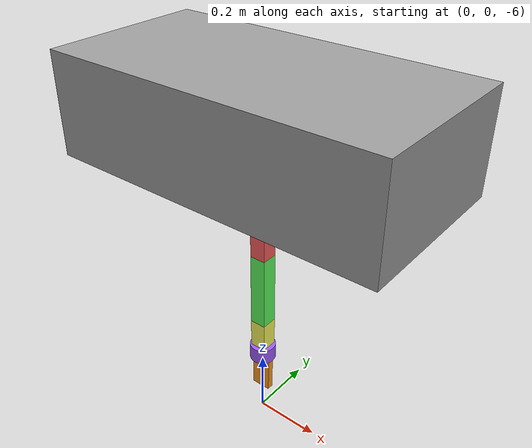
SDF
<?xml version="1.0" ?>
<sdf version="1.6">
  <world name="robosub_underwater">

    <!-- Lighting -->
    <light name="sun" type="directional">
      <pose>0 0 10 0 0 0</pose>
      <diffuse>1 1 1 1</diffuse>
      <specular>0.5 0.5 0.5 1</specular>
      <direction>0.1 0.1 -1</direction>
      <cast_shadows>true</cast_shadows>
    </light>

    <!-- buoyancy plugin -->
    <plugin filename="gz-sim-buoyancy-system"
            name="gz::sim::systems::Buoyancy">
      <uniform_fluid_density>1025</uniform_fluid_density>
    </plugin>

    <!-- seafloor at z= -10-->
    <model name="seafloor">
      <static>true</static>
      <pose>0 0 -10 0 0 0</pose>
      <link name="link">
        <collision name="col">
          <geometry>
            <plane><normal>0 0 1</normal></plane>
          </geometry>
        </collision>
        <visual name="vis">
          <geometry>
            <plane>
              <normal>0 0 1</normal>
              <size>50 50</size>
            </plane>
          </geometry>
          <material>
            <diffuse>0.75 0.70 0.45 1</diffuse>
  	    <ambient>0.75 0.70 0.45 1</ambient>
          </material>
        </visual>
      </link>
    </model>

    <!-- sub model itself-->
    <model name='RoboSub'>
      <pose>0 0 -5 0 0 0</pose>

      <!-- Fix RoboSub body to world so it never moves -->
      <!-- may add hydrodynamics to sub later on -->
      <joint name='world_to_robosub' type='fixed'>
        <parent>world</parent>
        <child>RoboSub</child>
      </joint>

      <!-- Hydrodynamics on each arm link -->
      <plugin filename="gz-sim-hydrodynamics-system"
              name="gz::sim::systems::Hydrodynamics">
        <link_name>Base</link_name>
        <linear_damping>-1 -1 -1 -0.1 -0.1 -0.1</linear_damping>
        <quadratic_damping>-0.5 -0.5 -0.5 -0.05 -0.05 -0.05</quadratic_damping>
      </plugin>
      <plugin filename="gz-sim-hydrodynamics-system"
              name="gz::sim::systems::Hydrodynamics">
        <link_name>bovenarm</link_name>
        <linear_damping>-2 -2 -2 -0.1 -0.1 -0.1</linear_damping>
        <quadratic_damping>-1 -1 -1 -0.05 -0.05 -0.05</quadratic_damping>
      </plugin>
      <plugin filename="gz-sim-hydrodynamics-system"
              name="gz::sim::systems::Hydrodynamics">
        <link_name>onderarm</link_name>
        <linear_damping>-2 -2 -2 -0.1 -0.1 -0.1</linear_damping>
        <quadratic_damping>-1 -1 -1 -0.05 -0.05 -0.05</quadratic_damping>
      </plugin>
      <plugin filename="gz-sim-hydrodynamics-system"
              name="gz::sim::systems::Hydrodynamics">
        <link_name>pols</link_name>
        <linear_damping>-1 -1 -1 -0.1 -0.1 -0.1</linear_damping>
        <quadratic_damping>-0.5 -0.5 -0.5 -0.05 -0.05 -0.05</quadratic_damping>
      </plugin>
      <plugin filename="gz-sim-hydrodynamics-system"
              name="gz::sim::systems::Hydrodynamics">
        <link_name>handBase</link_name>
        <linear_damping>-0.5 -0.5 -0.5 -0.05 -0.05 -0.05</linear_damping>
        <quadratic_damping>-0.2 -0.2 -0.2 -0.01 -0.01 -0.01</quadratic_damping>
      </plugin>
      <plugin filename="gz-sim-hydrodynamics-system"
              name="gz::sim::systems::Hydrodynamics">
        <link_name>gripper1</link_name>
        <linear_damping>-0.2 -0.2 -0.2 -0.01 -0.01 -0.01</linear_damping>
        <quadratic_damping>-0.1 -0.1 -0.1 -0.005 -0.005 -0.005</quadratic_damping>
      </plugin>
      <plugin filename="gz-sim-hydrodynamics-system"
              name="gz::sim::systems::Hydrodynamics">
        <link_name>gripper2</link_name>
        <linear_damping>-0.2 -0.2 -0.2 -0.01 -0.01 -0.01</linear_damping>
        <quadratic_damping>-0.1 -0.1 -0.1 -0.005 -0.005 -0.005</quadratic_damping>
      </plugin>

      <link name='RoboSub'>
        <inertial>
          <pose>0 0 0 0 0 0</pose>
          <mass>10</mass>
          <inertia>
            <ixx>0.1</ixx>
            <ixy>0</ixy>
            <ixz>0</ixz>
            <iyy>0.1</iyy>
            <iyz>0</iyz>
            <izz>0.1</izz>
          </inertia>
        </inertial>
        <collision name='RoboSub_collision'>
          <pose>0 0 0 0 0 0</pose>
          <geometry>
            <box>
              <size>1 0.5 0.3</size>
            </box>
          </geometry>
        </collision>
        <visual name='RoboSub_visual'>
          <pose>0 0 0 0 0 0</pose>
          <geometry>
            <box>
              <size>1 0.5 0.3</size>
            </box>
          </geometry>
          <material>
            <diffuse>0.625 0.625 0.625 1</diffuse>
            <ambient>0.625 0.625 0.625 1</ambient>
          </material>
        </visual>
      </link>

      <joint name='RoboSub_to_Base' type='revolute'>
        <pose relative_to='RoboSub'>0 0 -0.15 0 0 0</pose>
        <parent>RoboSub</parent>
        <child>Base</child>
        <axis>
          <xyz>0 0 1</xyz>
          <limit>
            <lower>-2.36</lower>
            <upper>2.36</upper>
            <effort>10</effort>
            <velocity>1</velocity>
          </limit>
          <dynamics>
            <spring_reference>0</spring_reference>
            <spring_stiffness>0</spring_stiffness>
          </dynamics>
        </axis>
      </joint>

      <link name='Base'>
        <pose relative_to='RoboSub_to_Base'>0 0 0 0 0 0</pose>
        <inertial>
          <pose>0 0 0 0 0 0</pose>
          <mass>1</mass>
          <inertia>
            <ixx>0.1</ixx>
            <ixy>0</ixy>
            <ixz>0</ixz>
            <iyy>0.1</iyy>
            <iyz>0</iyz>
            <izz>0.1</izz>
          </inertia>
        </inertial>
        <collision name='Base_collision'>
          <pose>0 0 0 0 0 0</pose>
          <geometry>
            <cylinder>
              <length>0.1</length>
              <radius>0.1</radius>
            </cylinder>
          </geometry>
        </collision>
        <visual name='Base_visual'>
          <pose>0 0 0 0 0 0</pose>
          <geometry>
            <cylinder>
              <length>0.1</length>
              <radius>0.1</radius>
            </cylinder>
          </geometry>
          <material>
            <diffuse>0.375 0.375 1 1</diffuse>
            <ambient>0.375 0.375 1 1</ambient>
          </material>
        </visual>
      </link>

      <joint name='Base_to_bovenarm' type='revolute'>
        <pose relative_to='Base'>0 0 -0.05 0 0 0</pose>
        <parent>Base</parent>
        <child>bovenarm</child>
        <axis>
          <xyz>0 -1 0</xyz>
          <limit>
            <lower>0.14</lower>
            <upper>1.5</upper>
            <effort>10</effort>
            <velocity>1</velocity>
          </limit>
          <dynamics>
            <spring_reference>0</spring_reference>
            <spring_stiffness>0</spring_stiffness>
          </dynamics>
        </axis>
      </joint>

      <link name='bovenarm'>
        <pose relative_to='Base_to_bovenarm'>0 0 0 0 0 0</pose>
        <inertial>
          <pose>0 0 0 0 0 0</pose>
          <mass>1</mass>
          <inertia>
            <ixx>0.1</ixx>
            <ixy>0</ixy>
            <ixz>0</ixz>
            <iyy>0.1</iyy>
            <iyz>0</iyz>
            <izz>0.1</izz>
          </inertia>
        </inertial>
        <collision name='bovenarm_collision'>
          <pose>0 0 -0.105 0 0 0</pose>
          <geometry>
            <box>
              <size>0.05 0.05 0.21</size>
            </box>
          </geometry>
        </collision>
        <visual name='bovenarm_visual'>
          <pose>0 0 -0.105 0 0 0</pose>
          <geometry>
            <box>
              <size>0.05 0.05 0.21</size>
            </box>
          </geometry>
          <material>
            <diffuse>1 0.375 0.375 1</diffuse>
            <ambient>1 0.375 0.375 1</ambient>
          </material>
        </visual>
      </link>

      <joint name='bovenarm_to_onderarm' type='revolute'>
        <pose relative_to='bovenarm'>0 0 -0.21 0 0 0</pose>
        <parent>bovenarm</parent>
        <child>onderarm</child>
        <axis>
          <xyz>0 1 0</xyz>
          <limit>
            <lower>0.53</lower>
            <upper>2.53</upper>
            <effort>10</effort>
            <velocity>1</velocity>
          </limit>
          <dynamics>
            <spring_reference>0</spring_reference>
            <spring_stiffness>0</spring_stiffness>
          </dynamics>
        </axis>
      </joint>

      <link name='onderarm'>
        <pose relative_to='bovenarm_to_onderarm'>0 0 0 0 0 0</pose>
        <inertial>
          <pose>0 0 0 0 0 0</pose>
          <mass>1</mass>
          <inertia>
            <ixx>0.1</ixx>
            <ixy>0</ixy>
            <ixz>0</ixz>
            <iyy>0.1</iyy>
            <iyz>0</iyz>
            <izz>0.1</izz>
          </inertia>
        </inertial>
        <collision name='onderarm_collision'>
          <pose>0 0 -0.1175 0 0 0</pose>
          <geometry>
            <box>
              <size>0.05 0.05 0.235</size>
            </box>
          </geometry>
        </collision>
        <visual name='onderarm_visual'>
          <pose>0 0 -0.1175 0 0 0</pose>
          <geometry>
            <box>
              <size>0.05 0.05 0.235</size>
            </box>
          </geometry>
          <material>
            <diffuse>0.375 1 0.375 1</diffuse>
            <ambient>0.375 1 0.375 1</ambient>
          </material>
        </visual>
      </link>

      <joint name='onderarm_to_pols' type='revolute'>
        <pose relative_to='onderarm'>0 0 -0.235 0 0 0</pose>
        <parent>onderarm</parent>
        <child>pols</child>
        <axis>
          <xyz>0 -1 0</xyz>
          <limit>
            <lower>-0.201</lower>
            <upper>0</upper>
            <effort>10</effort>
            <velocity>1</velocity>
          </limit>
          <dynamics>
            <spring_reference>0</spring_reference>
            <spring_stiffness>0</spring_stiffness>
          </dynamics>
        </axis>
      </joint>

      <link name='pols'>
        <pose relative_to='onderarm_to_pols'>0 0 0 0 0 0</pose>
        <inertial>
          <pose>0 0 0 0 0 0</pose>
          <mass>1</mass>
          <inertia>
            <ixx>0.1</ixx>
            <ixy>0</ixy>
            <ixz>0</ixz>
            <iyy>0.1</iyy>
            <iyz>0</iyz>
            <izz>0.1</izz>
          </inertia>
        </inertial>
        <collision name='pols_collision'>
          <pose>0 0 -0.067 0 0 0</pose>
          <geometry>
            <cylinder>
              <length>0.134</length>
              <radius>0.04</radius>
            </cylinder>
          </geometry>
        </collision>
        <visual name='pols_visual'>
          <pose>0 0 -0.067 0 0 0</pose>
          <geometry>
            <box>
              <size>0.05 0.05 0.134</size>
            </box>
          </geometry>
          <material>
            <diffuse>1 1 0.375 1</diffuse>
            <ambient>1 1 0.375 1</ambient>
          </material>
        </visual>
      </link>

      <joint name='pols_to_handBase' type='revolute'>
        <pose relative_to='pols'>0 0 -0.117 0 0 0</pose>
        <parent>pols</parent>
        <child>handBase</child>
        <axis>
          <xyz>0 0 1</xyz>
          <limit>
            <lower>-2.36</lower>
            <upper>2.36</upper>
            <effort>10</effort>
            <velocity>1</velocity>
          </limit>
          <dynamics>
            <spring_reference>0</spring_reference>
            <spring_stiffness>0</spring_stiffness>
          </dynamics>
        </axis>
      </joint>

      <link name='handBase'>
        <pose relative_to='pols_to_handBase'>0 0 0 0 0 0</pose>
        <inertial>
          <pose>0 0 0 0 0 0</pose>
          <mass>1</mass>
          <inertia>
            <ixx>0.1</ixx>
            <ixy>0</ixy>
            <ixz>0</ixz>
            <iyy>0.1</iyy>
            <iyz>0</iyz>
            <izz>0.1</izz>
          </inertia>
        </inertial>
        <collision name='handBase_collision'>
          <pose>0 0 0 0 0 0</pose>
          <geometry>
            <cylinder>
              <length>0.05</length>
              <radius>0.04</radius>
            </cylinder>
          </geometry>
        </collision>
        <visual name='handBase_visual'>
          <pose>0 0 0 0 0 0</pose>
          <geometry>
            <cylinder>
              <length>0.05</length>
              <radius>0.04</radius>
            </cylinder>
          </geometry>
          <material>
            <diffuse>0.625 0.375 1 1</diffuse>
            <ambient>0.625 0.375 1 1</ambient>
          </material>
        </visual>
      </link>

      <joint name='handBase_to_gripper1' type='revolute'>
        <pose relative_to='handBase'>0.015 0 -0.025 0 0 0</pose>
        <parent>handBase</parent>
        <child>gripper1</child>
        <axis>
          <xyz>0 -1 0</xyz>
          <limit>
            <lower>0</lower>
            <upper>1.57</upper>
            <effort>5</effort>
            <velocity>1</velocity>
          </limit>
          <dynamics>
            <spring_reference>0</spring_reference>
            <spring_stiffness>0</spring_stiffness>
          </dynamics>
        </axis>
      </joint>

      <link name='gripper1'>
        <pose relative_to='handBase_to_gripper1'>0 0 0 0 0 0</pose>
        <inertial>
          <pose>0 0 0 0 0 0</pose>
          <mass>0.1</mass>
          <inertia>
            <ixx>0.01</ixx>
            <ixy>0</ixy>
            <ixz>0</ixz>
            <iyy>0.01</iyy>
            <iyz>0</iyz>
            <izz>0.01</izz>
          </inertia>
        </inertial>
        <collision name='gripper1_collision'>
          <pose>0 0 -0.05 0 0 0</pose>
          <geometry>
            <box>
              <size>0.031 0.02 0.14</size>
            </box>
          </geometry>
        </collision>
        <visual name='gripper1_visual'>
          <pose>0 0 -0.05 0 0 0</pose>
          <geometry>
            <box>
              <size>0.031 0.02 0.14</size>
            </box>
          </geometry>
          <material>
            <diffuse>1 0.625 0.125 1</diffuse>
            <ambient>1 0.625 0.125 1</ambient>
          </material>
        </visual>
      </link>

      <joint name='handBase_to_gripper2' type='revolute'>
        <pose relative_to='handBase'>-0.015 0 -0.025 0 0 0</pose>
        <parent>handBase</parent>
        <child>gripper2</child>
        <axis>
          <xyz>0 -1 0</xyz>
          <limit>
            <lower>-1.57</lower>
            <upper>0</upper>
            <effort>5</effort>
            <velocity>1</velocity>
          </limit>
          <dynamics>
            <spring_reference>0</spring_reference>
            <spring_stiffness>0</spring_stiffness>
          </dynamics>
        </axis>
      </joint>

      <link name='gripper2'>
        <pose relative_to='handBase_to_gripper2'>0 0 0 0 0 0</pose>
        <inertial>
          <pose>0 0 0 0 0 0</pose>
          <mass>0.1</mass>
          <inertia>
            <ixx>0.01</ixx>
            <ixy>0</ixy>
            <ixz>0</ixz>
            <iyy>0.01</iyy>
            <iyz>0</iyz>
            <izz>0.01</izz>
          </inertia>
        </inertial>
        <collision name='gripper2_collision'>
          <pose>0 0 -0.05 0 0 0</pose>
          <geometry>
            <box>
              <size>0.031 0.02 0.14</size>
            </box>
          </geometry>
        </collision>
        <visual name='gripper2_visual'>
          <pose>0 0 -0.05 0 0 0</pose>
          <geometry>
            <box>
              <size>0.031 0.02 0.14</size>
            </box>
          </geometry>
          <material>
            <diffuse>1 0.625 0.125 1</diffuse>
            <ambient>1 0.625 0.125 1</ambient>
          </material>
        </visual>
      </link>

    </model>
  </world>
</sdf>
